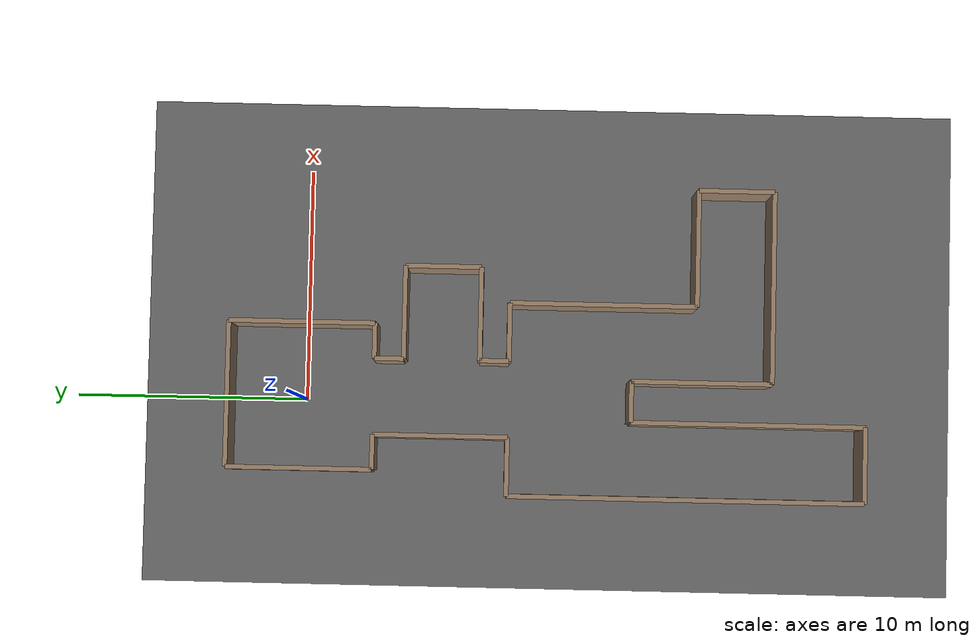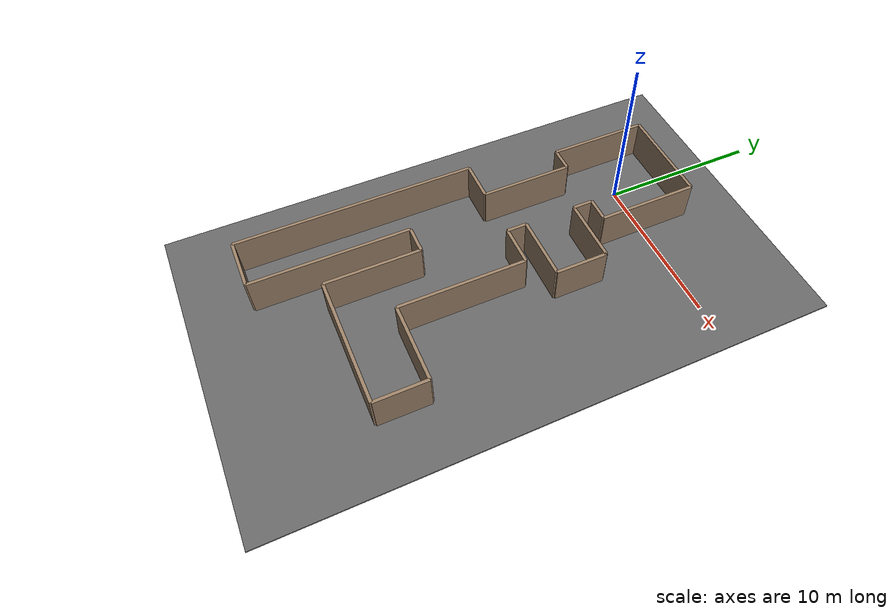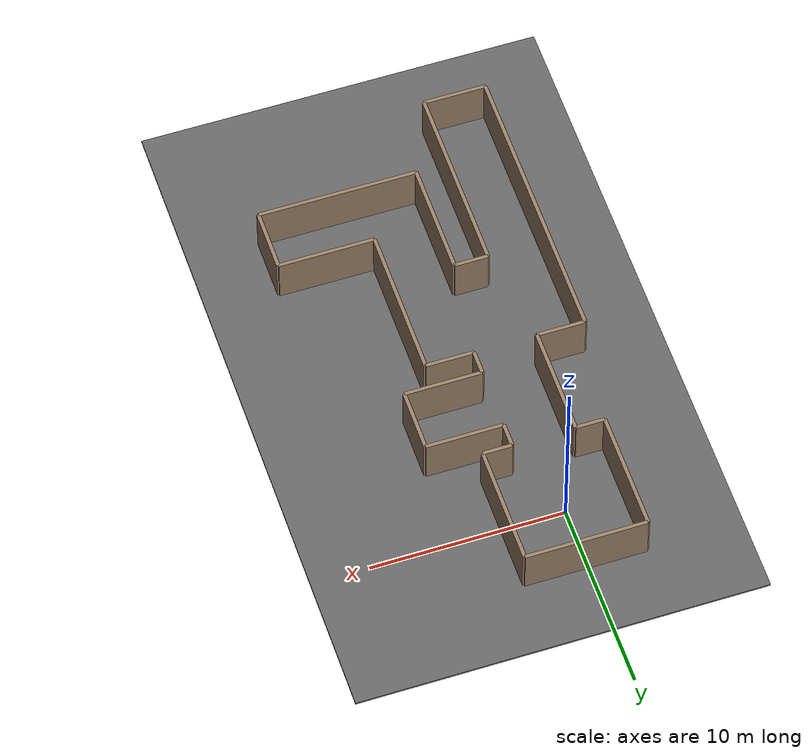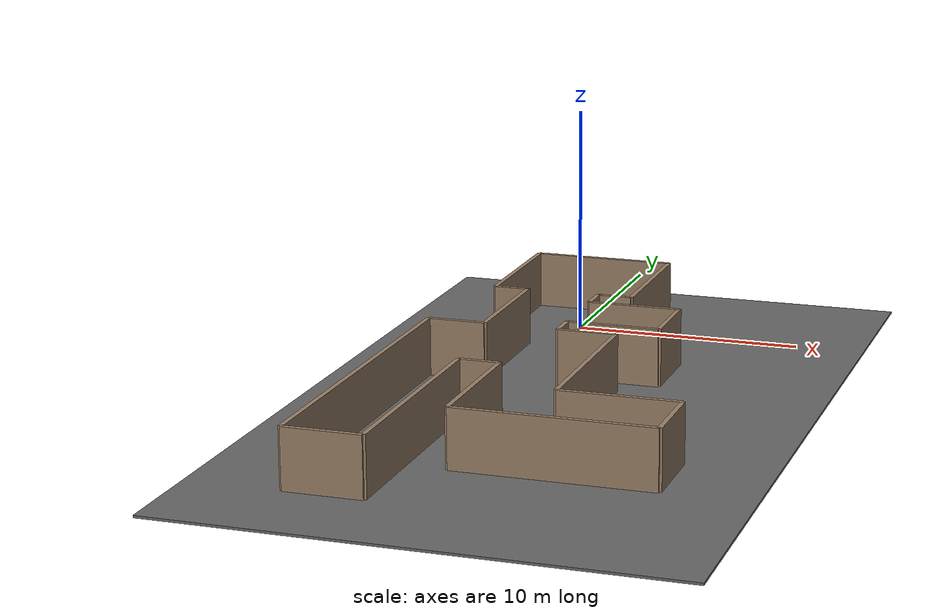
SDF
<sdf version="1.9">
 <world name="empty">
  <physics name="1ms" type="ignored">
   <max_step_size>0.001</max_step_size>
   <real_time_factor>1.0</real_time_factor>
  </physics>
  <plugin filename="gz-sim-physics-system" name="gz::sim::systems::Physics"/>
  <plugin filename="gz-sim-user-commands-system" name="gz::sim::systems::UserCommands"/>
  <plugin filename="gz-sim-scene-broadcaster-system" name="gz::sim::systems::SceneBroadcaster"/>
  <light type="directional" name="sun">
   <pose>0 0 30 0 0 0</pose>
   <diffuse>0.9 0.9 0.9 1</diffuse>
   <specular>0.2 0.2 0.2 1</specular>
   <direction>-0.5 0.3 -1</direction>
  </light>
  <scene><ambient>0.5 0.5 0.5 1</ambient><background>0.2 0.2 0.2 1</background><shadows>true</shadows></scene>
  <model name="floor">
   <static>true</static>
   <pose>2.5 -10.5 0 0 0 0</pose>
   <link name="link">
    <collision name="collision"><geometry><box><size>21.0 35.0 0.1</size></box></geometry></collision>
    <visual name="visual">
     <geometry><box><size>21.0 35.0 0.1</size></box></geometry>
     <material><ambient>0.3 0.3 0.3 1</ambient><diffuse>0.4 0.4 0.4 1</diffuse></material>
    </visual>
    <pose>0 0 -0.05 0 0 0</pose>
   </link>
  </model>
  <model name="wall_h0">
   <static>true</static>
   <pose>-2.375 -24.000 1.250 0 0 0</pose>
   <link name="link">
    <collision name="collision"><geometry><box><size>3.250 0.200 2.500</size></box></geometry></collision>
    <visual name="visual">
     <geometry><box><size>3.250 0.200 2.500</size></box></geometry>
     <material><ambient>0.5 0.4 0.3 1</ambient><diffuse>0.6 0.5 0.4 1</diffuse></material>
    </visual>
   </link>
  </model>
  <model name="wall_h1">
   <static>true</static>
   <pose>5.125 -20.000 1.250 0 0 0</pose>
   <link name="link">
    <collision name="collision"><geometry><box><size>8.250 0.200 2.500</size></box></geometry></collision>
    <visual name="visual">
     <geometry><box><size>8.250 0.200 2.500</size></box></geometry>
     <material><ambient>0.5 0.4 0.3 1</ambient><diffuse>0.6 0.5 0.4 1</diffuse></material>
    </visual>
   </link>
  </model>
  <model name="wall_h2">
   <static>true</static>
   <pose>6.750 -16.750 1.250 0 0 0</pose>
   <link name="link">
    <collision name="collision"><geometry><box><size>5.000 0.200 2.500</size></box></geometry></collision>
    <visual name="visual">
     <geometry><box><size>5.000 0.200 2.500</size></box></geometry>
     <material><ambient>0.5 0.4 0.3 1</ambient><diffuse>0.6 0.5 0.4 1</diffuse></material>
    </visual>
   </link>
  </model>
  <model name="wall_h3">
   <static>true</static>
   <pose>0.125 -14.000 1.250 0 0 0</pose>
   <link name="link">
    <collision name="collision"><geometry><box><size>1.750 0.200 2.500</size></box></geometry></collision>
    <visual name="visual">
     <geometry><box><size>1.750 0.200 2.500</size></box></geometry>
     <material><ambient>0.5 0.4 0.3 1</ambient><diffuse>0.6 0.5 0.4 1</diffuse></material>
    </visual>
   </link>
  </model>
  <model name="wall_h4">
   <static>true</static>
   <pose>-2.750 -8.750 1.250 0 0 0</pose>
   <link name="link">
    <collision name="collision"><geometry><box><size>2.500 0.200 2.500</size></box></geometry></collision>
    <visual name="visual">
     <geometry><box><size>2.500 0.200 2.500</size></box></geometry>
     <material><ambient>0.5 0.4 0.3 1</ambient><diffuse>0.6 0.5 0.4 1</diffuse></material>
    </visual>
   </link>
  </model>
  <model name="wall_h5">
   <static>true</static>
   <pose>3.000 -8.750 1.250 0 0 0</pose>
   <link name="link">
    <collision name="collision"><geometry><box><size>2.500 0.200 2.500</size></box></geometry></collision>
    <visual name="visual">
     <geometry><box><size>2.500 0.200 2.500</size></box></geometry>
     <material><ambient>0.5 0.4 0.3 1</ambient><diffuse>0.6 0.5 0.4 1</diffuse></material>
    </visual>
   </link>
  </model>
  <model name="wall_h6">
   <static>true</static>
   <pose>3.750 -7.500 1.250 0 0 0</pose>
   <link name="link">
    <collision name="collision"><geometry><box><size>4.000 0.200 2.500</size></box></geometry></collision>
    <visual name="visual">
     <geometry><box><size>4.000 0.200 2.500</size></box></geometry>
     <material><ambient>0.5 0.4 0.3 1</ambient><diffuse>0.6 0.5 0.4 1</diffuse></material>
    </visual>
   </link>
  </model>
  <model name="wall_h7">
   <static>true</static>
   <pose>3.750 -4.250 1.250 0 0 0</pose>
   <link name="link">
    <collision name="collision"><geometry><box><size>4.000 0.200 2.500</size></box></geometry></collision>
    <visual name="visual">
     <geometry><box><size>4.000 0.200 2.500</size></box></geometry>
     <material><ambient>0.5 0.4 0.3 1</ambient><diffuse>0.6 0.5 0.4 1</diffuse></material>
    </visual>
   </link>
  </model>
  <model name="wall_h8">
   <static>true</static>
   <pose>-2.250 -3.000 1.250 0 0 0</pose>
   <link name="link">
    <collision name="collision"><geometry><box><size>1.500 0.200 2.500</size></box></geometry></collision>
    <visual name="visual">
     <geometry><box><size>1.500 0.200 2.500</size></box></geometry>
     <material><ambient>0.5 0.4 0.3 1</ambient><diffuse>0.6 0.5 0.4 1</diffuse></material>
    </visual>
   </link>
  </model>
  <model name="wall_h9">
   <static>true</static>
   <pose>2.500 -3.000 1.250 0 0 0</pose>
   <link name="link">
    <collision name="collision"><geometry><box><size>1.500 0.200 2.500</size></box></geometry></collision>
    <visual name="visual">
     <geometry><box><size>1.500 0.200 2.500</size></box></geometry>
     <material><ambient>0.5 0.4 0.3 1</ambient><diffuse>0.6 0.5 0.4 1</diffuse></material>
    </visual>
   </link>
  </model>
  <model name="wall_h10">
   <static>true</static>
   <pose>0.125 3.250 1.250 0 0 0</pose>
   <link name="link">
    <collision name="collision"><geometry><box><size>6.250 0.200 2.500</size></box></geometry></collision>
    <visual name="visual">
     <geometry><box><size>6.250 0.200 2.500</size></box></geometry>
     <material><ambient>0.5 0.4 0.3 1</ambient><diffuse>0.6 0.5 0.4 1</diffuse></material>
    </visual>
   </link>
  </model>
  <model name="wall_v11">
   <static>true</static>
   <pose>-4.000 -16.375 1.250 0 0 0</pose>
   <link name="link">
    <collision name="collision"><geometry><box><size>0.200 15.250 2.500</size></box></geometry></collision>
    <visual name="visual">
     <geometry><box><size>0.200 15.250 2.500</size></box></geometry>
     <material><ambient>0.5 0.4 0.3 1</ambient><diffuse>0.6 0.5 0.4 1</diffuse></material>
    </visual>
   </link>
  </model>
  <model name="wall_v12">
   <static>true</static>
   <pose>-3.000 0.125 1.250 0 0 0</pose>
   <link name="link">
    <collision name="collision"><geometry><box><size>0.200 6.250 2.500</size></box></geometry></collision>
    <visual name="visual">
     <geometry><box><size>0.200 6.250 2.500</size></box></geometry>
     <material><ambient>0.5 0.4 0.3 1</ambient><diffuse>0.6 0.5 0.4 1</diffuse></material>
    </visual>
   </link>
  </model>
  <model name="wall_v13">
   <static>true</static>
   <pose>-1.500 -5.875 1.250 0 0 0</pose>
   <link name="link">
    <collision name="collision"><geometry><box><size>0.200 5.750 2.500</size></box></geometry></collision>
    <visual name="visual">
     <geometry><box><size>0.200 5.750 2.500</size></box></geometry>
     <material><ambient>0.5 0.4 0.3 1</ambient><diffuse>0.6 0.5 0.4 1</diffuse></material>
    </visual>
   </link>
  </model>
  <model name="wall_v14">
   <static>true</static>
   <pose>-0.750 -19.000 1.250 0 0 0</pose>
   <link name="link">
    <collision name="collision"><geometry><box><size>0.200 10.000 2.500</size></box></geometry></collision>
    <visual name="visual">
     <geometry><box><size>0.200 10.000 2.500</size></box></geometry>
     <material><ambient>0.5 0.4 0.3 1</ambient><diffuse>0.6 0.5 0.4 1</diffuse></material>
    </visual>
   </link>
  </model>
  <model name="wall_v15">
   <static>true</static>
   <pose>1.000 -17.000 1.250 0 0 0</pose>
   <link name="link">
    <collision name="collision"><geometry><box><size>0.200 6.000 2.500</size></box></geometry></collision>
    <visual name="visual">
     <geometry><box><size>0.200 6.000 2.500</size></box></geometry>
     <material><ambient>0.5 0.4 0.3 1</ambient><diffuse>0.6 0.5 0.4 1</diffuse></material>
    </visual>
   </link>
  </model>
  <model name="wall_v16">
   <static>true</static>
   <pose>1.750 -8.125 1.250 0 0 0</pose>
   <link name="link">
    <collision name="collision"><geometry><box><size>0.200 1.250 2.500</size></box></geometry></collision>
    <visual name="visual">
     <geometry><box><size>0.200 1.250 2.500</size></box></geometry>
     <material><ambient>0.5 0.4 0.3 1</ambient><diffuse>0.6 0.5 0.4 1</diffuse></material>
    </visual>
   </link>
  </model>
  <model name="wall_v17">
   <static>true</static>
   <pose>1.750 -3.625 1.250 0 0 0</pose>
   <link name="link">
    <collision name="collision"><geometry><box><size>0.200 1.250 2.500</size></box></geometry></collision>
    <visual name="visual">
     <geometry><box><size>0.200 1.250 2.500</size></box></geometry>
     <material><ambient>0.5 0.4 0.3 1</ambient><diffuse>0.6 0.5 0.4 1</diffuse></material>
    </visual>
   </link>
  </model>
  <model name="wall_v18">
   <static>true</static>
   <pose>3.250 0.125 1.250 0 0 0</pose>
   <link name="link">
    <collision name="collision"><geometry><box><size>0.200 6.250 2.500</size></box></geometry></collision>
    <visual name="visual">
     <geometry><box><size>0.200 6.250 2.500</size></box></geometry>
     <material><ambient>0.5 0.4 0.3 1</ambient><diffuse>0.6 0.5 0.4 1</diffuse></material>
    </visual>
   </link>
  </model>
  <model name="wall_v19">
   <static>true</static>
   <pose>4.250 -12.750 1.250 0 0 0</pose>
   <link name="link">
    <collision name="collision"><geometry><box><size>0.200 8.000 2.500</size></box></geometry></collision>
    <visual name="visual">
     <geometry><box><size>0.200 8.000 2.500</size></box></geometry>
     <material><ambient>0.5 0.4 0.3 1</ambient><diffuse>0.6 0.5 0.4 1</diffuse></material>
    </visual>
   </link>
  </model>
  <model name="wall_v20">
   <static>true</static>
   <pose>5.750 -5.875 1.250 0 0 0</pose>
   <link name="link">
    <collision name="collision"><geometry><box><size>0.200 3.250 2.500</size></box></geometry></collision>
    <visual name="visual">
     <geometry><box><size>0.200 3.250 2.500</size></box></geometry>
     <material><ambient>0.5 0.4 0.3 1</ambient><diffuse>0.6 0.5 0.4 1</diffuse></material>
    </visual>
   </link>
  </model>
  <model name="wall_v21">
   <static>true</static>
   <pose>9.250 -18.375 1.250 0 0 0</pose>
   <link name="link">
    <collision name="collision"><geometry><box><size>0.200 3.250 2.500</size></box></geometry></collision>
    <visual name="visual">
     <geometry><box><size>0.200 3.250 2.500</size></box></geometry>
     <material><ambient>0.5 0.4 0.3 1</ambient><diffuse>0.6 0.5 0.4 1</diffuse></material>
    </visual>
   </link>
  </model>
 </world>
</sdf>
